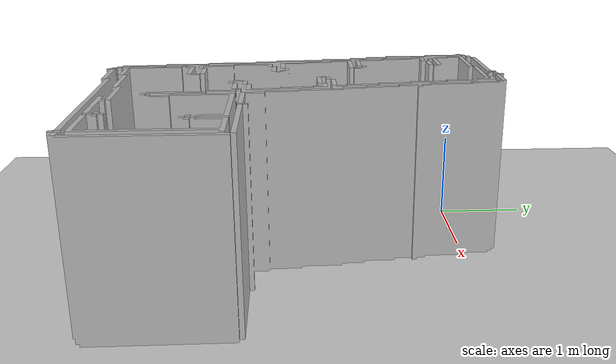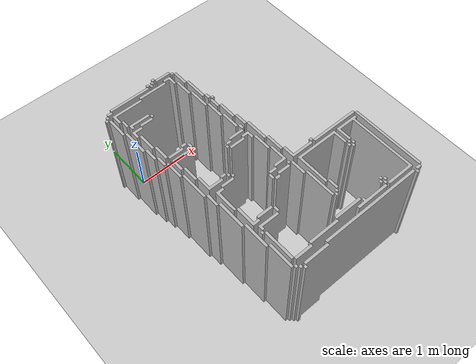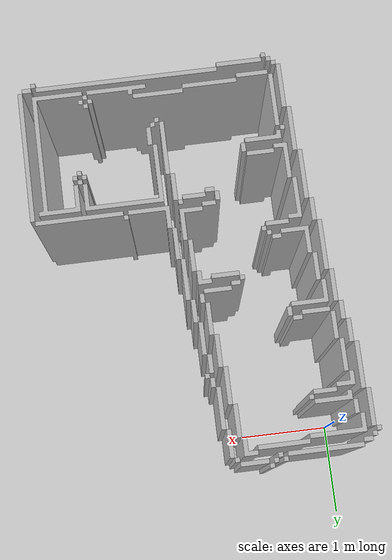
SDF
<?xml version="1.0" ?>
<sdf version="1.6">
  <world name="default">

    <!-- 插入默认地面 -->
    <include>
      <uri>model://ground_plane</uri>
    </include>

    <!-- 插入一个光源 -->
    <include>
      <uri>model://sun</uri>
    </include>

    <!-- 插入你生成的墙体 -->
    <include>
      <uri>file:///home/suda/drone_ugv_ws/src/map2gazebo/models/map</uri>
    </include>

  </world>
</sdf>

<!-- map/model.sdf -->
<sdf version="1.6">
  <model name="map">
    <link name="link">
      <inertial>
        <mass>15</mass>
        <inertia>
          <ixx>0.0</ixx>
          <ixy>0.0</ixy>
          <ixz>0.0</ixz>
          <iyy>0.0</iyy>
          <iyz>0.0</iyz>
          <izz>0.0</izz>
        </inertia>
      </inertial>
      <collision name="collision">
        <pose>0 0 0 0 0 0</pose>
        <geometry>
          <mesh>
            <uri>model://map/meshes/yahboomcar.stl</uri>
          </mesh>
        </geometry>
      </collision>
      <visual name="visual">
        <pose>0 0 0 0 0 0</pose>
        <geometry>
          <mesh>
            <uri>model://map/meshes/yahboomcar.stl</uri>
          </mesh>
        </geometry>
      </visual>
    </link>
    <static>1</static>
  </model>
</sdf>
